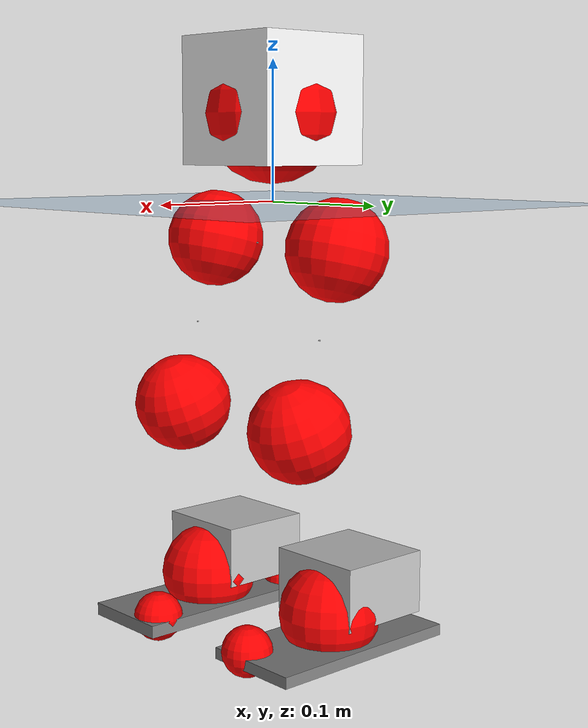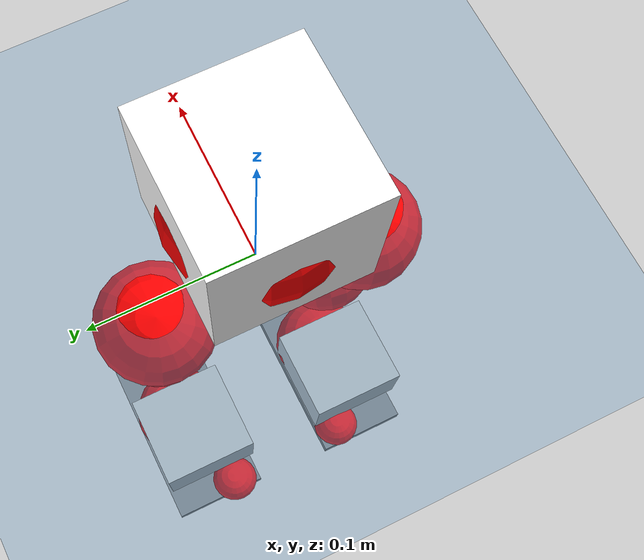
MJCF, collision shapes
<mujoco model="pi_12dof_release_v1">
  <compiler angle="radian" assetdir="assets" balanceinertia="true" inertiafromgeom="false"/>

  <option timestep="0.005" density="1.2" viscosity="2e-05"/>

  <size nkey="1"/>

  <visual>
    <quality shadowsize="8192"/>
    <map shadowclip="0.5"/>
  </visual>

  <default>
    <default class="/">
      <joint armature="0.01" damping="0.01" frictionloss="0.01"/>
      <geom contype="0" conaffinity="0" group="1" solref="-1000 -80"/>
      <site size="0.01 0.005 0.005" group="5"/>
      <general forcelimited="true" biastype="affine" gainprm="20" biasprm="0 -20 -0.5"/>
      <default class="foot">
        <geom size="0.0845 0.036 0.005" type="box" condim="6" group="4" priority="1" friction="0.9 0.2 0.2" solimp="0.015 1 0.005"/>
      </default>
      <default class="reward_collision_sphere">
        <geom group="5" rgba="1 0 0 1"/>
      </default>
    </default>
  </default>

  <asset>
    <texture type="skybox" colorspace="auto" name="//unnamed_texture_0" builtin="gradient" rgb1="0.95 0.95 0.95" rgb2="0.95 0.95 0.95" width="100" height="600"/>
    <texture type="2d" colorspace="auto" name="texplane" builtin="checker" rgb1="0.345 0.575 0.748" rgb2="0.345 0.575 0.748" markrgb="1 1 1" width="512" height="512"/>
    <material name="MatPlane" class="/" texture="texplane" texuniform="true" texrepeat="2 2" specular="0.9"/>
    <mesh name="baselink_1" class="/" file="baselink_1.STL"/>
    <mesh name="r_hip_pitch_link" class="/" file="r_hip_pitch_link.STL"/>
    <mesh name="r_hip_roll_link" class="/" file="r_hip_roll_link.STL"/>
    <mesh name="r_thigh_link" class="/" file="r_thigh_link.STL"/>
    <mesh name="r_calf_link" class="/" file="r_calf_link.STL"/>
    <mesh name="r_ankle_pitch_link" class="/" file="r_ankle_pitch_link.STL"/>
    <mesh name="r_ankle_roll_link" class="/" file="r_ankle_roll_link.STL"/>
    <mesh name="l_hip_pitch_link" class="/" file="l_hip_pitch_link.STL"/>
    <mesh name="l_hip_roll_link" class="/" file="l_hip_roll_link.STL"/>
    <mesh name="l_thigh_link" class="/" file="l_thigh_link.STL"/>
    <mesh name="l_calf_link" class="/" file="l_calf_link.STL"/>
    <mesh name="l_ankle_pitch_link" class="/" file="l_ankle_pitch_link.STL"/>
    <mesh name="l_ankle_roll_link" class="/" file="l_ankle_roll_link.STL"/>
  </asset>

  <worldbody>
    <geom name="floor" class="/" size="100 100 0.125" type="plane" group="0" material="MatPlane"/>
    <light name="toplight_shadow" class="/" pos="0 0 5" dir="0.0990148 0.0990148 -0.990148" type="directional" ambient="0.04 0.04 0.04" diffuse="0.55 0.55 0.55" specular="0.12 0.12 0.12"/>
    <light name="toplight_fill" class="/" pos="0 0 5" dir="0.0990148 0.0990148 -0.990148" type="directional" castshadow="false" ambient="0.04 0.04 0.04" diffuse="0.3 0.3 0.3" specular="0.08 0.08 0.08"/>
    <body name="trunk" pos="0.000433339 -0.000225174 -0.00108568" quat="1 -4.14181e-05 9.95836e-05 1.75715e-05">
      <inertial pos="0.000532763 -0.00302492 0.0358293" quat="0.693195 0.00728274 0.00637408 0.720686" mass="1.58096" diaginertia="0.00804934 0.00408623 0.00253778"/>
      <joint name="//unnamed_joint_0" type="free"/>
      <geom name="//unnamed_geom_1" class="/" type="mesh" density="0" rgba="1 1 1 1" mesh="baselink_1"/>
      <geom name="//unnamed_geom_2" class="/" size="0.0451423 0.0451423 0.0451423" pos="0 0 0.0721333" type="box" rgba="1 1 1 1"/>
      <geom name="//unnamed_geom_3" class="reward_collision_sphere" size="0.0496565" pos="0 0 0.0631166"/>
      <site name="imu" class="/" pos="-0.0129103 0.000485458 0.0109337" size="0.00902846"/>
      <camera name="track" class="/" pos="0 -1.69843 0" quat="0.707107 0.707107 0 0" mode="trackcom"/>
      <camera name="ego_camera" class="/" pos="0.0718241 0 0.1623" quat="-0.5 -0.5 0.5 0.5"/>
      <body name="r_hip_pitch_link" pos="-0.00198621 -0.0182056 -0.0294002" quat="0.992189 -0.000194074 -0.124744 4.02227e-05">
        <inertial pos="0.00328793 -0.0477784 -0.000288806" quat="-0.0186287 0.705519 -0.0264704 0.707951" mass="0.263005" diaginertia="8.43538e-05 4.32332e-05 4.86197e-05"/>
        <joint name="r_hip_pitch_joint" class="/" pos="0 0 0" axis="-0.00932068 -0.999955 0.00171726" stiffness="0.0100229" range="-1.74974 1.20101" armature="0.00925886" damping="0" frictionloss="0.00947001"/>
        <geom name="//unnamed_geom_4" class="/" type="mesh" density="0" rgba="0.75294 0.75294 0.75294 1" mesh="r_hip_pitch_link"/>
        <geom name="//unnamed_geom_5" class="/" size="0.000451423 0.000451423 0.000451423" type="box" rgba="0.75294 0.75294 0.75294 1"/>
        <body name="r_hip_roll_link" pos="0.000113741 -0.047932 0.00109998" quat="1 0.000124289 0.000130677 2.83717e-05">
          <inertial pos="-0.00160655 6.08351e-05 -0.0532067" quat="0.702963 -0.0768932 -0.0846705 0.70197" mass="0.289778" diaginertia="0.000263134 0.000123823 7.75601e-05"/>
          <joint name="r_hip_roll_joint" class="/" pos="0 0 0" axis="-0.999926 -0.0120169 0.00167576" stiffness="0.00262096" range="-0.165756 0.478663" armature="0.00935927" damping="0.00760431" frictionloss="0.00963906"/>
          <geom name="//unnamed_geom_6" class="/" type="mesh" density="0" rgba="0.75294 0.75294 0.75294 1" mesh="r_hip_roll_link"/>
          <geom name="//unnamed_geom_7" class="/" size="0.000451423 0.000451423 0.000451423" type="box" rgba="0.75294 0.75294 0.75294 1"/>
          <geom name="//unnamed_geom_8" class="reward_collision_sphere" size="0.0361138"/>
          <body name="r_thigh_link" pos="0.00126998 -0.00104067 -0.0646492" quat="1 0.000785428 0.000386971 -0.000125149">
            <inertial pos="0.000784749 0.000725157 -0.041851" quat="0.738252 0.674508 -0.000328498 0.00479448" mass="0.082423" diaginertia="0.000100712 4.15993e-05 3.48451e-05"/>
            <joint name="r_thigh_joint" class="/" pos="0 0 0" axis="0.00199326 0.00659056 -0.999976" range="-0.320276 0.57686" armature="0.00869811" damping="0.00114314" frictionloss="0.00886629"/>
            <geom name="//unnamed_geom_9" class="/" type="mesh" density="0" rgba="0.75294 0.75294 0.75294 1" mesh="r_thigh_link"/>
            <geom name="//unnamed_geom_10" class="/" size="0.000451423 0.000451423 0.000451423" type="box" rgba="0.75294 0.75294 0.75294 1"/>
            <body name="r_calf_link" pos="-0.00151542 -0.0014397 -0.0617227" quat="0.947753 -7.36067e-05 0.319005 4.41106e-05">
              <inertial pos="0.00173992 -0.000969325 -0.0625735" quat="0.999985 -0.00342413 0.00103095 0.00419642" mass="0.610648" diaginertia="0.00287721 0.00156153 0.000104759"/>
              <joint name="r_calf_joint" class="/" pos="0 0 0" axis="0.000464923 -1 0.000601343" range="-1.66212 0.650223" armature="0.00863183" damping="0.0122192" frictionloss="0.00914449"/>
              <geom name="//unnamed_geom_11" class="/" type="mesh" density="0" rgba="0.75294 0.75294 0.75294 1" mesh="r_calf_link"/>
              <geom name="//unnamed_geom_12" class="/" size="0.000451423 0.000451423 0.000451423" type="box" rgba="0.75294 0.75294 0.75294 1"/>
              <geom name="//unnamed_geom_13" class="reward_collision_sphere" size="0.0361138"/>
              <body name="r_ankle_pitch_link" pos="0.000547115 0.00301736 -0.126473" quat="0.980071 -2.87747e-05 -0.198649 2.01608e-05">
                <inertial pos="0.00461706 0.00270489 -0.000732298" quat="0.00106059 0.711656 0.00587555 0.702503" mass="0.123105" diaginertia="0.000244274 9.68913e-05 6.96713e-05"/>
                <joint name="r_ankle_pitch_joint" class="/" pos="0 0 0" axis="-0.00582748 -0.999977 -0.00353227" range="-1.27679 0.486285" armature="0.00930749" damping="0" frictionloss="0.00906455"/>
                <geom name="//unnamed_geom_14" class="/" type="mesh" density="0" rgba="0.75294 0.75294 0.75294 1" mesh="r_ankle_pitch_link"/>
                <geom name="//unnamed_geom_15" class="/" size="0.035211 0.0361138 0.0225712" type="box" rgba="0.75294 0.75294 0.75294 1"/>
                <body name="r_ankle_roll_link" pos="0.0758255 0.000832558 -0.000214885" quat="1 -4.25977e-05 -0.000159598 1.52878e-05">
                  <inertial pos="-0.0228076 4.0588e-06 -0.0107584" quat="0.559081 0.431823 0.434591 0.558649" mass="0.382335" diaginertia="0.000881018 0.000444837 0.0001697"/>
                  <joint name="r_ankle_roll_joint" class="/" pos="0 0 0" axis="-0.999993 -0.00292615 -0.0023038" stiffness="0.0012986" range="-0.170833 0.135864" armature="0.00851081" damping="0" frictionloss="0.00996306"/>
                  <geom name="//unnamed_geom_16" class="/" type="mesh" density="0" rgba="0.75294 0.75294 0.75294 1" mesh="r_ankle_roll_link"/>
                  <geom name="//unnamed_geom_17" class="/" type="mesh" rgba="0.75294 0.75294 0.75294 1" mesh="r_ankle_roll_link"/>
                  <geom name="right_foot" class="foot" size="0.0818669 0.0344385 0.00465337" pos="-0.0488404 0 -0.0396733"/>
                  <geom name="//unnamed_geom_19" class="reward_collision_sphere" size="0.0361138" pos="-0.0478828 0 -0.0180333"/>
                  <geom name="//unnamed_geom_20" class="reward_collision_sphere" size="0.0180569" pos="0.0143648 0.0169843 -0.0360666"/>
                  <geom name="//unnamed_geom_21" class="reward_collision_sphere" size="0.0180569" pos="-0.114919 0.0169843 -0.0360666"/>
                  <site name="right_foot" class="foot" pos="-0.0488404 0 -0.0396733" size="0.00902846"/>
                </body>
              </body>
            </body>
          </body>
        </body>
      </body>
      <body name="l_hip_pitch_link" pos="-0.00232775 0.0189783 -0.0299703" quat="0.992199 -5.64861e-05 -0.124667 -0.000339473">
        <inertial pos="0.00046968 0.0478005 0.000259602" quat="-0.0391681 0.704792 0.0317782 0.707618" mass="0.284567" diaginertia="0.000101999 4.66838e-05 5.69124e-05"/>
        <joint name="l_hip_pitch_joint" class="/" pos="0 0 0" axis="0.00399726 0.999989 0.0023663" stiffness="0.00100602" range="-1.29207 1.73486" armature="0.0101511" damping="0.000580316" frictionloss="0.00927682"/>
        <geom name="//unnamed_geom_22" class="/" type="mesh" density="0" rgba="0.75294 0.75294 0.75294 1" mesh="l_hip_pitch_link"/>
        <geom name="//unnamed_geom_23" class="/" size="0.000451423 0.000451423 0.000451423" type="box" rgba="0.75294 0.75294 0.75294 1"/>
        <body name="l_hip_roll_link" pos="1.69975e-05 0.0450984 -0.000260001" quat="1 -2.791e-05 -3.26348e-05 -5.87152e-05">
          <inertial pos="-0.000872629 0.0016316 -0.0544639" quat="0.700851 -0.0759828 -0.0784859 0.704893" mass="0.28584" diaginertia="0.000269111 0.000122008 7.56639e-05"/>
          <joint name="l_hip_roll_joint" class="/" pos="0 0 0" axis="-0.999901 -0.000985816 -0.0140332" range="-0.449042 0.128582" armature="0.00890093" damping="0.00825775" frictionloss="0.00804209"/>
          <geom name="//unnamed_geom_24" class="/" type="mesh" density="0" rgba="0.75294 0.75294 0.75294 1" mesh="l_hip_roll_link"/>
          <geom name="//unnamed_geom_25" class="/" size="0.000451423 0.000451423 0.000451423" type="box" rgba="0.75294 0.75294 0.75294 1"/>
          <geom name="//unnamed_geom_26" class="reward_collision_sphere" size="0.0361138"/>
          <body name="l_thigh_link" pos="-0.000354212 -0.00101679 -0.0628066" quat="1 -3.40941e-05 0.000127016 -0.000388247">
            <inertial pos="0.000350301 -0.0015361 -0.0438191" quat="0.673249 0.739306 0.00234381 0.0125111" mass="0.0826838" diaginertia="0.000100996 4.1712e-05 3.32822e-05"/>
            <joint name="l_thigh_joint" class="/" pos="0 0 0" axis="0.00510528 0.00134727 -0.999986" range="-0.611077 0.306408" armature="0.00894776" damping="0" frictionloss="0.00932316"/>
            <geom name="//unnamed_geom_27" class="/" type="mesh" density="0" rgba="0.75294 0.75294 0.75294 1" mesh="l_thigh_link"/>
            <geom name="//unnamed_geom_28" class="/" size="0.000451423 0.000451423 0.000451423" type="box" rgba="0.75294 0.75294 0.75294 1"/>
            <body name="l_calf_link" pos="0.000951708 -0.00176405 -0.0639736" quat="0.947588 0.00086329 0.319492 4.09725e-05">
              <inertial pos="-0.00208557 0.00277585 -0.0614238" quat="0.999983 -0.00177597 0.00151617 0.00527327" mass="0.600979" diaginertia="0.00283242 0.00154869 0.000100991"/>
              <joint name="l_calf_joint" class="/" pos="0 0 0" axis="0.000360507 0.999994 0.00354586" range="-0.667965 1.60053" armature="0.00807698" damping="0.00651115" frictionloss="0.00802506"/>
              <geom name="//unnamed_geom_29" class="/" type="mesh" density="0" rgba="0.75294 0.75294 0.75294 1" mesh="l_calf_link"/>
              <geom name="//unnamed_geom_30" class="/" size="0.000451423 0.000451423 0.000451423" type="box" rgba="0.75294 0.75294 0.75294 1"/>
              <geom name="//unnamed_geom_31" class="reward_collision_sphere" size="0.0361138"/>
              <body name="l_ankle_pitch_link" pos="0.000888699 0.00164117 -0.124017" quat="0.980016 2.17772e-07 -0.198917 -9.54761e-05">
                <inertial pos="0.00602368 0.000274659 -0.000299454" quat="-0.00170685 0.707185 0.00207968 0.707023" mass="0.121275" diaginertia="0.000233639 9.51807e-05 6.83596e-05"/>
                <joint name="l_ankle_pitch_joint" class="/" pos="0 0 0" axis="0.00663087 0.999975 0.00231007" range="-0.502591 1.29357" armature="0.00919137" damping="0" frictionloss="0.010204"/>
                <geom name="//unnamed_geom_32" class="/" type="mesh" density="0" rgba="0.75294 0.75294 0.75294 1" mesh="l_ankle_pitch_link"/>
                <geom name="//unnamed_geom_33" class="/" size="0.035211 0.0361138 0.0225712" type="box" rgba="0.75294 0.75294 0.75294 1"/>
                <body name="l_ankle_roll_link" pos="0.0697527 0.00252033 -0.000718836" quat="1 -2.54067e-05 0.000107653 1.28374e-05">
                  <inertial pos="-0.0228426 -0.000314724 -0.0127201" quat="0.565933 0.431694 0.435112 0.551396" mass="0.384876" diaginertia="0.000915283 0.000469202 0.00017078"/>
                  <joint name="l_ankle_roll_joint" class="/" pos="0 0 0" axis="-0.999996 -0.000816071 -0.00272902" stiffness="0.00111506" range="-0.157238 0.150771" armature="0.00949744" damping="0.00862195" frictionloss="0.00789189"/>
                  <geom name="//unnamed_geom_34" class="/" type="mesh" density="0" rgba="0.75294 0.75294 0.75294 1" mesh="l_ankle_roll_link"/>
                  <geom name="//unnamed_geom_35" class="/" type="mesh" rgba="0.75294 0.75294 0.75294 1" mesh="l_ankle_roll_link"/>
                  <geom name="left_foot" class="foot" size="0.0756441 0.0362989 0.00405861" pos="-0.0488404 0 -0.0396733"/>
                  <geom name="//unnamed_geom_37" class="reward_collision_sphere" size="0.0361138" pos="-0.0478828 0 -0.0180333"/>
                  <geom name="//unnamed_geom_38" class="reward_collision_sphere" size="0.0180569" pos="0.0143648 -0.0169843 -0.0360666"/>
                  <geom name="//unnamed_geom_39" class="reward_collision_sphere" size="0.0180569" pos="-0.114919 -0.0169843 -0.0360666"/>
                  <site name="left_foot" class="foot" pos="-0.0488404 0 -0.0396733" size="0.00902846"/>
                </body>
              </body>
            </body>
          </body>
        </body>
      </body>
    </body>
  </worldbody>

  <contact>
    <pair class="/" geom1="floor" geom2="right_foot" name="//unnamed_contact_1"/>
    <pair class="/" geom1="floor" geom2="left_foot" name="//unnamed_contact_0"/>
  </contact>

  <actuator>
    <general name="r_hip_pitch_joint" class="/" joint="r_hip_pitch_joint" forcerange="-18.3147 18.3147" gainprm="18.1495" biasprm="0 -18.1495 -0.478907"/>
    <general name="r_hip_roll_joint" class="/" joint="r_hip_roll_joint" forcerange="-17.6079 17.6079" gainprm="18.1495" biasprm="0 -18.1495 -0.478907"/>
    <general name="r_thigh_joint" class="/" joint="r_thigh_joint" forcerange="-20.0522 20.0522" gainprm="18.1495" biasprm="0 -18.1495 -0.478907"/>
    <general name="r_calf_joint" class="/" joint="r_calf_joint" forcerange="-18.8867 18.8867" gainprm="18.1495" biasprm="0 -18.1495 -0.478907"/>
    <general name="r_ankle_pitch_joint" class="/" joint="r_ankle_pitch_joint" forcerange="-17.6081 17.6081" gainprm="18.1495" biasprm="0 -18.1495 -0.478907"/>
    <general name="r_ankle_roll_joint" class="/" joint="r_ankle_roll_joint" forcerange="-18.7999 18.7999" gainprm="18.1495" biasprm="0 -18.1495 -0.478907"/>
    <general name="l_hip_pitch_joint" class="/" joint="l_hip_pitch_joint" forcerange="-19.1116 19.1116" gainprm="18.1495" biasprm="0 -18.1495 -0.478907"/>
    <general name="l_hip_roll_joint" class="/" joint="l_hip_roll_joint" forcerange="-18.822 18.822" gainprm="18.1495" biasprm="0 -18.1495 -0.478907"/>
    <general name="l_thigh_joint" class="/" joint="l_thigh_joint" forcerange="-19.633 19.633" gainprm="18.1495" biasprm="0 -18.1495 -0.478907"/>
    <general name="l_calf_joint" class="/" joint="l_calf_joint" forcerange="-18.5493 18.5493" gainprm="18.1495" biasprm="0 -18.1495 -0.478907"/>
    <general name="l_ankle_pitch_joint" class="/" joint="l_ankle_pitch_joint" forcerange="-18.5971 18.5971" gainprm="18.1495" biasprm="0 -18.1495 -0.478907"/>
    <general name="l_ankle_roll_joint" class="/" joint="l_ankle_roll_joint" forcerange="-17.4299 17.4299" gainprm="18.1495" biasprm="0 -18.1495 -0.478907"/>
  </actuator>

  <sensor>
    <gyro site="imu" name="imu_angular_velocity"/>
    <velocimeter site="imu" name="imu_linear_velocity"/>
    <framelinvel objtype="site" objname="left_foot" name="left_foot_global_linear_velocity"/>
    <framelinvel objtype="site" objname="right_foot" name="right_foot_global_linear_velocity"/>
  </sensor>

  <keyframe>
    <key name="home" qpos="0 0 0.291 1 0 0 0 0.4 0 0 -0.8 0.4 0 -0.4 0 0 0.8 -0.4 0"/>
  </keyframe>
</mujoco>
